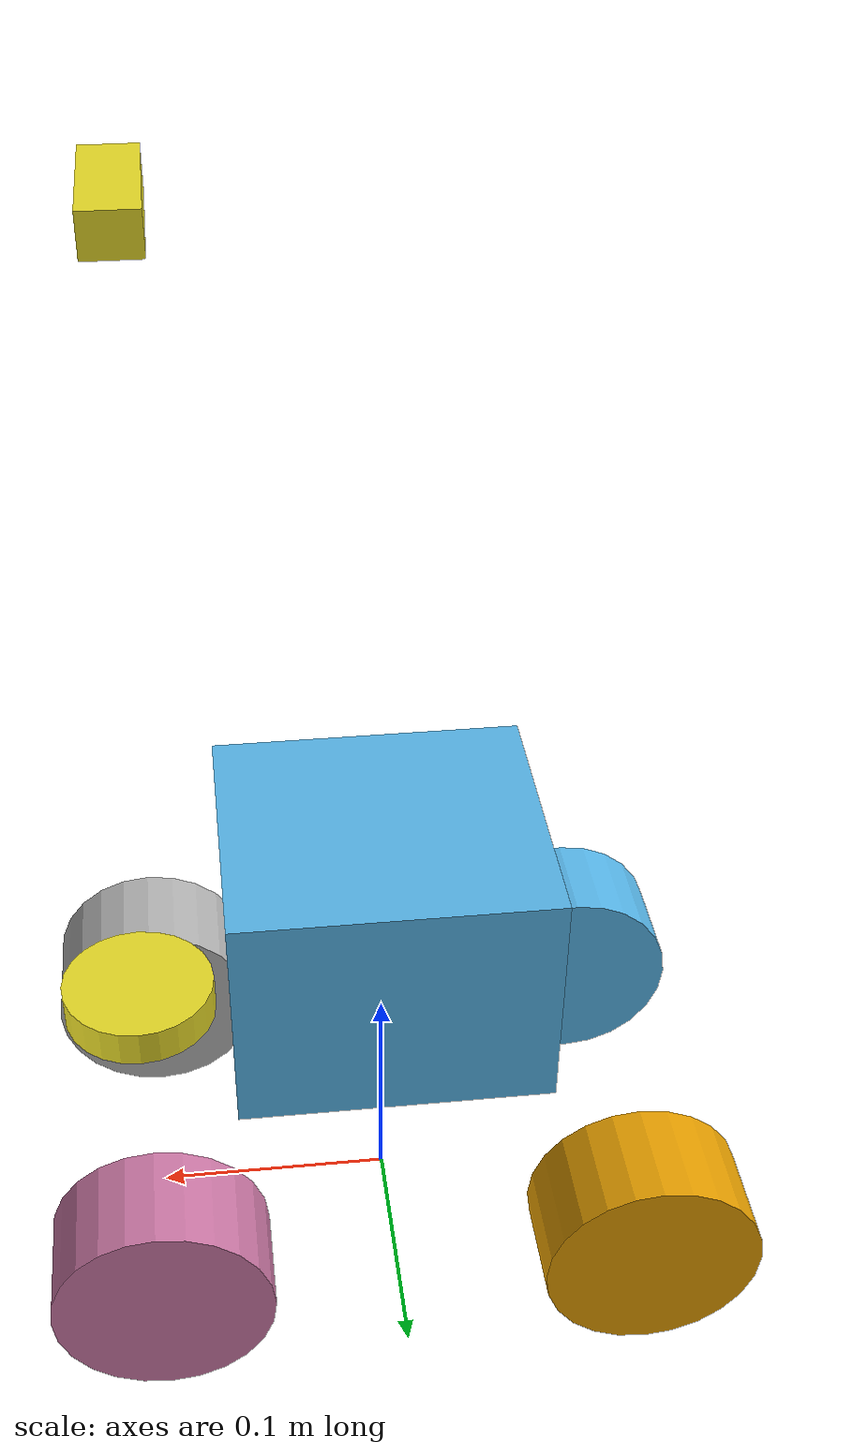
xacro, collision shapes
<?xml version="1.0"?>
<robot name="limo_four_diff" xmlns:xacro="http://ros.org/wiki/xacro">

  <xacro:include filename="$(find limo_description)/urdf/limo_xacro.xacro" />

  <!-- Vars -->
  <xacro:property name="M_PI" value="3.14159"/>
  <xacro:property name="base_x_size" value="0.13" />
  <xacro:property name="base_y_size" value="0.12" />
  <xacro:property name="base_z_size" value="0.10" />
  <xacro:property name="wheelbase" value="0.2"/>
  <xacro:property name="track" value="0.13"/>
  <xacro:property name="wheel_vertical_offset" value="-0.105" />
  <xacro:property name="wheel_length" value="0.045" />
  <xacro:property name="wheel_radius" value="0.045" />

  <link name="base_footprint"/>
  <joint name="base_joint" type="fixed">
    <parent link="base_footprint"/>
    <child link="base_link"/>
    <origin xyz="0.0 0.0 0.15" rpy="0 0 0"/>
  </joint>

  <!-- Base -->
  <link name="base_link">
    <!-- 단일 질량/관성 블록 -->
    <inertial>
      <origin xyz="0 0 -0.05" rpy="0 0 0"/>
      <mass value="10.0"/>
      <inertia ixx="0.0203333333" ixy="0" ixz="0"
               iyy="0.0224166667" iyz="0"
               izz="0.0260833333"/>
    </inertial>

    <visual>
      <origin xyz="0 0 -0.15" rpy="0 0 1.57" />
      <geometry>
        <mesh filename="file://$(find limo_description)/meshes/limo_base.dae" scale="1 1 1"/>
      </geometry>
    </visual>

    <collision>
      <origin xyz="0 0 0" rpy="0 0 0" />
      <geometry>
        <box size="${base_x_size} ${base_y_size} ${base_z_size}"/>
      </geometry>
    </collision>
  </link>

  <!-- Sensors -->
  <xacro:limo_laser parent_prefix="base_link" frame_prefix="laser">
    <origin xyz="0.103 0 -0.034" rpy="0 0 0"/>
  </xacro:limo_laser>
  <xacro:limo_depth_camera parent_prefix="base_link" frame_prefix="depth_camera">
    <origin xyz="0.084 0 0.3" rpy="0 0 0"/>
  </xacro:limo_depth_camera>
  <xacro:limo_imu parent_prefix="base_link" frame_prefix="imu">
    <origin xyz="0.0 0 -0.1" rpy="0 0 0"/>
  </xacro:limo_imu>

  <!-- Wheels -->
  <xacro:limo_wheel parent_prefix="base_link" wheel_prefix="front_left"  reflect="1">
    <origin xyz="${wheelbase/2} ${track/2} ${wheel_vertical_offset}" rpy="0 0 0" />
  </xacro:limo_wheel>
  <xacro:limo_wheel parent_prefix="base_link" wheel_prefix="front_right" reflect="-1">
    <origin xyz="${wheelbase/2} ${-track/2} ${wheel_vertical_offset}" rpy="${M_PI} 0 0" />
  </xacro:limo_wheel>
  <xacro:limo_wheel parent_prefix="base_link" wheel_prefix="rear_left"   reflect="1">
    <origin xyz="${-wheelbase/2} ${track/2} ${wheel_vertical_offset}" rpy="0 0 0" />
  </xacro:limo_wheel>
  <xacro:limo_wheel parent_prefix="base_link" wheel_prefix="rear_right"  reflect="-1">
    <origin xyz="${-wheelbase/2} ${-track/2} ${wheel_vertical_offset}" rpy="${M_PI} 0 0" />
  </xacro:limo_wheel>

  <!-- Gazebo: IMU -->
  <gazebo reference="imu_link">
    <gravity>true</gravity>
    <sensor name="twr_imu" type="imu">
      <always_on>true</always_on>
      <visualize>true</visualize>
      <update_rate>100</update_rate>
      <imu>
        <orientation>
          <x><noise type="gaussian"><mean>0.0</mean><stddev>2e-3</stddev></noise></x>
          <y><noise type="gaussian"><mean>0.0</mean><stddev>2e-3</stddev></noise></y>
          <z><noise type="gaussian"><mean>0.0</mean><stddev>2e-3</stddev></noise></z>
        </orientation>
      </imu>
      <plugin name="imu_plugin" filename="libgazebo_ros_imu_sensor.so">
        <frame_name>imu_link</frame_name>
        <ros><namespace>/imu</namespace><remapping>~/out:=data</remapping></ros>
      </plugin>
    </sensor>
  </gazebo>

  <!-- Gazebo: Laser -->
  <gazebo reference="laser_link">
    <sensor name="laser" type="ray">
      <always_on>true</always_on>
      <visualize>true</visualize>
      <update_rate>20</update_rate>
      <ray>
        <scan><horizontal><samples>720</samples><resolution>1.0</resolution>
          <min_angle>-3.14</min_angle><max_angle>3.14</max_angle>
        </horizontal></scan>
        <range><min>0.3</min><max>15.0</max><resolution>0.005</resolution></range>
      </ray>
      <plugin name="scan" filename="libgazebo_ros_ray_sensor.so">
        <ros><remapping>~/out:=scan</remapping></ros>
        <output_type>sensor_msgs/LaserScan</output_type>
        <frame_name>laser_link</frame_name>
      </plugin>
    </sensor>
  </gazebo>

  <!-- Gazebo: Base friction -->
  <gazebo reference="base_link">
    <mu1>1.0</mu1>
    <mu2>1.0</mu2>
    <slip1>0.05</slip1>
    <slip2>0.05</slip2>
    <kp>2.0e6</kp>
    <kd>5</kd>
    <maxVel>0.2</maxVel>
    <minDepth>0.002</minDepth>
    <selfCollide>false</selfCollide>
    <maxContacts>15</maxContacts>
  </gazebo>

  <!-- Gazebo: Wheel friction -->
  <gazebo reference="front_left_wheel">
    <mu1>3.0</mu1><mu2>2.5</mu2>
    <slip1>0.02</slip1><slip2>0.02</slip2>
    <kp>1.0e6</kp><kd>5</kd>
    <maxVel>0.2</maxVel><minDepth>0.002</minDepth>
  </gazebo>
  <gazebo reference="front_right_wheel">
    <mu1>3.0</mu1><mu2>2.5</mu2>
    <slip1>0.02</slip1><slip2>0.02</slip2>
    <kp>1.0e6</kp><kd>5</kd>
    <maxVel>0.2</maxVel><minDepth>0.002</minDepth>
  </gazebo>
  <gazebo reference="rear_left_wheel">
    <mu1>3.0</mu1><mu2>2.5</mu2>
    <slip1>0.02</slip1><slip2>0.02</slip2>
    <kp>1.0e6</kp><kd>5</kd>
    <maxVel>0.2</maxVel><minDepth>0.002</minDepth>
  </gazebo>
  <gazebo reference="rear_right_wheel">
    <mu1>3.0</mu1><mu2>2.5</mu2>
    <slip1>0.02</slip1><slip2>0.02</slip2>
    <kp>1.0e6</kp><kd>5</kd>
    <maxVel>0.2</maxVel><minDepth>0.002</minDepth>
  </gazebo>

  <!-- Gazebo: Diff drive plugin (조인트 이름 = 매크로 생성 그대로) -->
  <gazebo>
    <plugin name="four_diff_controller" filename="libgazebo_ros_diff_drive.so">
      <update_rate>50</update_rate>

      <!-- 왼쪽 바퀴 두 개 -->
      <left_joint>front_left_wheel</left_joint>
      <left_joint>rear_left_wheel</left_joint>

      <!-- 오른쪽 바퀴 두 개 -->
      <right_joint>front_right_wheel</right_joint>
      <right_joint>rear_right_wheel</right_joint>
      <num_wheel_pairs>2</num_wheel_pairs>
      <wheel_separation>${track}</wheel_separation>
      <wheel_diameter>0.09</wheel_diameter>
      <max_wheel_torque>8.0</max_wheel_torque>
      <max_wheel_acceleration>0.15</max_wheel_acceleration>

      <command_topic>cmd_vel</command_topic>
      <odometry_topic>odom</odometry_topic>
      <robot_base_frame>base_footprint</robot_base_frame>
      <ros><remapping>odom:=/odometry</remapping></ros>
    </plugin>
  </gazebo>

</robot>

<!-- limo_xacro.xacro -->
<robot name="limo_xacro" xmlns:xacro="http://ros.org/wiki/xacro">
    <xacro:macro name="limo_wheel" params="parent_prefix wheel_prefix reflect *joint_pose">
        <link name="${wheel_prefix}_wheel_link">
            <inertial>
                <origin xyz="0 0 0" />
                <mass value="0.5" />
                <inertia ixx="0.01055" ixy="0" ixz="0" iyy="0.00075" iyz="0" izz="0.01055" />
            </inertial>
            <visual>
                <origin xyz="0 0 0" rpy="0 0 0" />
                <geometry>
                    <mesh filename="file://$(find limo_description)/meshes/limo_wheel.dae" />
                </geometry>
            </visual>
            <collision>
              <origin xyz="0 ${wheel_length/2} 0" rpy="1.57 0 0" />
              <geometry>
                  <cylinder length="${wheel_length}" radius="${wheel_radius}" />
              </geometry>
            </collision>
        </link>

        <joint name="${wheel_prefix}_wheel" type="continuous">
            <parent link="${parent_prefix}"/>
            <child link="${wheel_prefix}_wheel_link"/>
            <xacro:insert_block name="joint_pose"/>
            <axis xyz="0 ${reflect*1} 0"/>
        </joint>
    </xacro:macro>

    <xacro:macro name="limo_laser" params="parent_prefix frame_prefix *joint_pose">
        <link name='${frame_prefix}_link'>
            <pose>0 0 0 0 0 0</pose>
            <inertial>
                <mass value="0.1"/>
                <origin xyz="0.0 0 0" rpy="0 0 0"/>
                <inertia
                    ixx="1e-6" ixy="0" ixz="0"
                    iyy="1e-6" iyz="0"
                    izz="1e-6"
                />
            </inertial>
            <visual name='laser_visual'>
                <origin xyz="0 0 0" rpy="0 0 0"/>
                <geometry>
                    <cylinder radius="0.02" length="0.01"/>
                </geometry>
                <material name='laser_material'>
                    <ambient>0.1 0.1 0.1 1</ambient>
                    <diffuse>0.1 0.1 0.2 1</diffuse>
                    <specular>0 0 0 0</specular>
                    <emissive>0 0 0 1</emissive>
                </material>
            </visual>
            <collision name='laser_collision'>
                <origin xyz="0 0 0" rpy="0 0 0"/>
                <geometry>
                    <cylinder radius="0.032" length="0.016"/>
                </geometry>
            </collision>
        </link>
        <joint type="fixed" name="laser_joint">
            <xacro:insert_block name="joint_pose"/>
            <child link="${frame_prefix}_link"/>
            <parent link="${parent_prefix}"/>
        </joint>
        <gazebo reference="${frame_prefix}_link">
            <material>Gazebo/Yellow</material>
        </gazebo>
    </xacro:macro>

    <xacro:macro name="limo_depth_camera" params="parent_prefix frame_prefix *joint_pose">
        <link name='${frame_prefix}_link'>
            <pose>0 0 0 0 0 0</pose>
            <inertial>
                <mass value="0.1"/>
                <origin xyz="0.0 0 0" rpy="0 0 0"/>
                <inertia
                    ixx="1e-6" ixy="0" ixz="0"
                    iyy="1e-6" iyz="0"
                    izz="1e-6"
                />
            </inertial>
            <visual name='depth_camera_visual'>
                <origin xyz="0 0 0" rpy="0 0 0"/>
                <geometry>
                    <box size="0.02 0.06 0.015"/>
                </geometry>
                <material name='depth_camera_material'>
                    <ambient>0.1 0.1 0.1 1</ambient>
                    <diffuse>0.1 0.1 0.2 1</diffuse>
                    <specular>0 0 0 0</specular>
                    <emissive>0 0 0 1</emissive>
                </material>
            </visual>
            <collision name='depth_camera_collision'>
                <origin xyz="0 0 0" rpy="0 0 0"/>
                <geometry>
                    <box size="0.02 0.06 0.015"/>
                </geometry>
            </collision>

        </link>

        <joint type="fixed" name="depth_camera_joint">
            <xacro:insert_block name="joint_pose"/>
            <child link="${frame_prefix}_link"/>
            <parent link="${parent_prefix}"/>
        </joint>
        <link name="depth_link"></link>

        <joint name="${frame_prefix}_to_camera_joint" type="fixed">
            <origin xyz="0 0 0" rpy="${-M_PI/2} 0 ${-M_PI/2} "/>
            <parent link="${frame_prefix}_link"/>
            <child link="depth_link"/>
          </joint>

        <gazebo reference="${frame_prefix}_link">
            <material>Gazebo/Yellow</material>
        </gazebo>
    </xacro:macro>

    <xacro:macro name="limo_imu" params="parent_prefix frame_prefix  *joint_pose">
        <link name='${frame_prefix}_link'>
            <pose>0 0 0 0 0 0</pose>
            <inertial>
                <mass value="0.01"/>
                <origin xyz="0.0 0 0" rpy="0 0 0"/>
                <inertia
                    ixx="1e-7" ixy="0" ixz="0"
                    iyy="1e-7" iyz="0"
                    izz="1e-7"
                />
            </inertial>
            <visual name='imu_visual'>
                <origin xyz="0 0 0" rpy="0 0 0"/>
                <geometry>
                    <box size="0.001 0.001 0.001"/>
                </geometry>
                <material name='imu_material'>
                    <ambient>0.1 0.1 0.1 1</ambient>
                    <diffuse>0.1 0.1 0.2 1</diffuse>
                    <specular>0 0 0 0</specular>
                    <emissive>0 0 0 1</emissive>
                </material>
            </visual>
            <collision name='imu_collision'>
                <origin xyz="0 0 0" rpy="0 0 0"/>
                <geometry>
                    <box size="0.001 0.001 0.001"/>
                </geometry>
            </collision>
        </link>
        <joint type="fixed" name="imu_joint">
            <xacro:insert_block name="joint_pose"/>
            <child link="${frame_prefix}_link"/>
            <parent link="${parent_prefix}"/>
        </joint>
        <gazebo reference="${frame_prefix}_link">
            <material>Gazebo/Yellow</material>
        </gazebo>
    </xacro:macro>
</robot>
